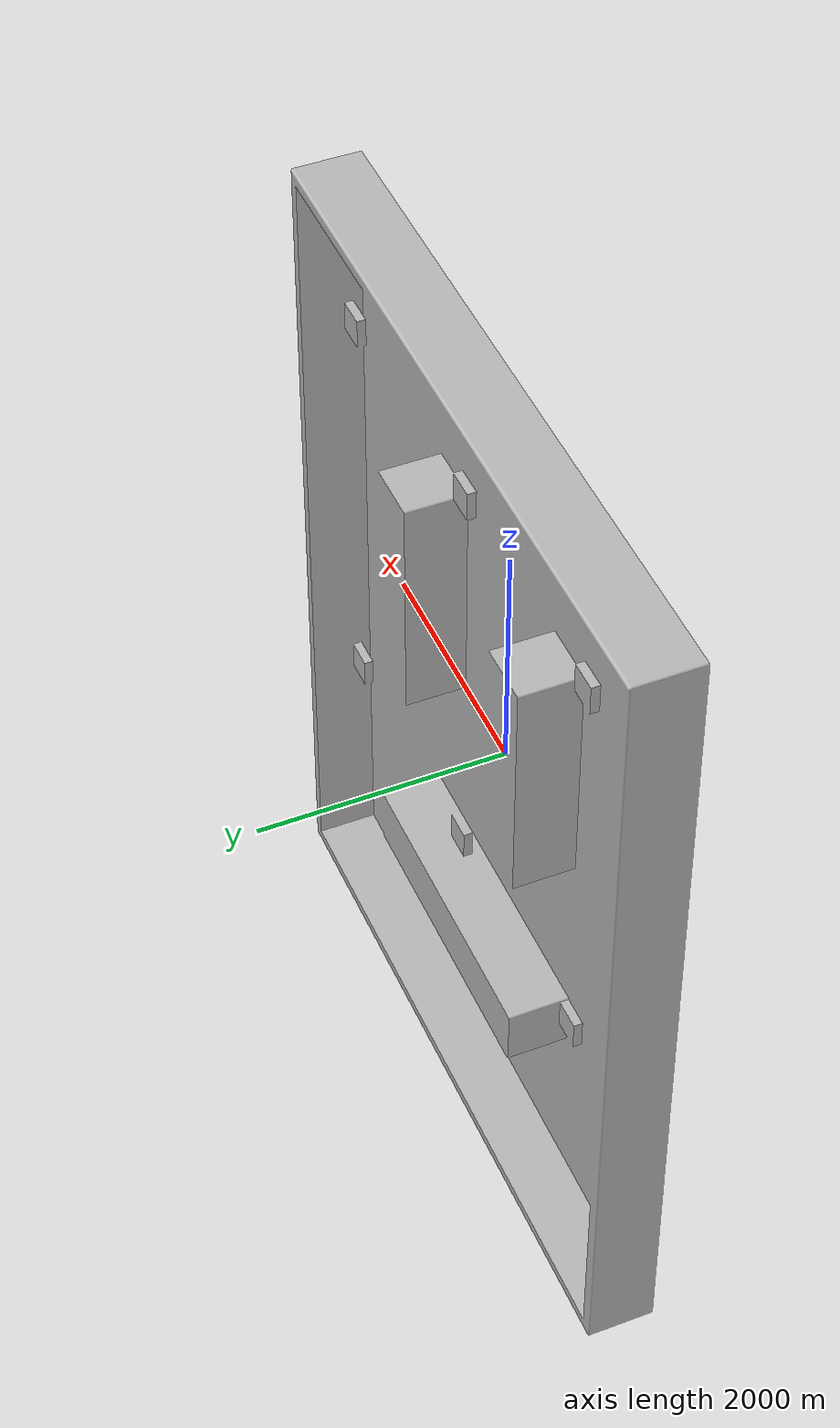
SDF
<?xml version='1.0'?>

<sdf version='1.4'>

  <model name="final_map">

    <link name="link">

      <collision name="collision">
        <geometry>
          <mesh>
            <uri>model://final_map/Final_map.stl</uri>
          </mesh>
        </geometry>
      </collision>

      <visual name="visual">
        <geometry>
          <mesh>
            <uri>model://final_map/Final_map.stl</uri>
          </mesh>
        </geometry>
      </visual>

    </link>

    <static>1</static>

  </model>

</sdf>
